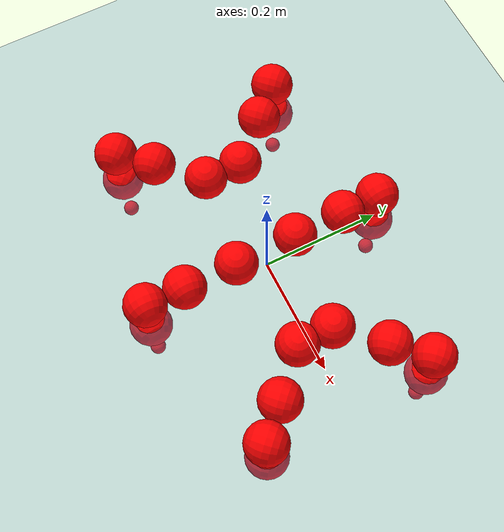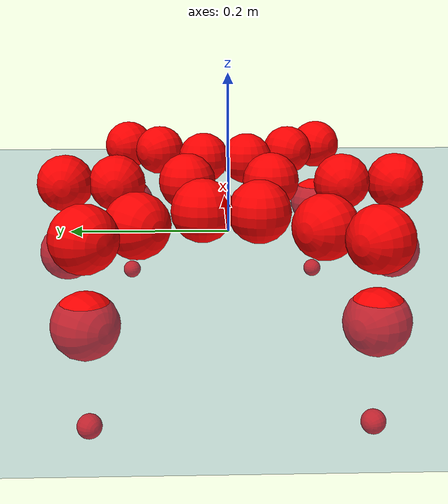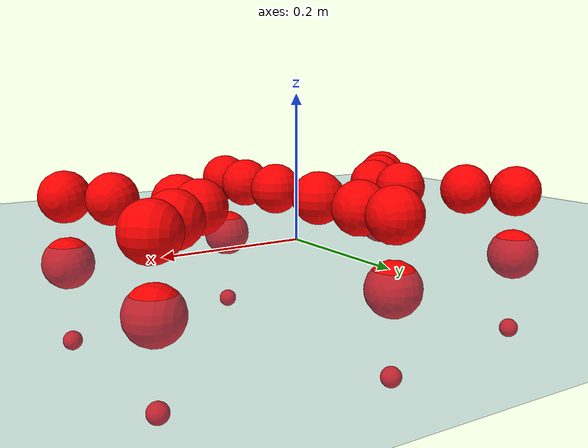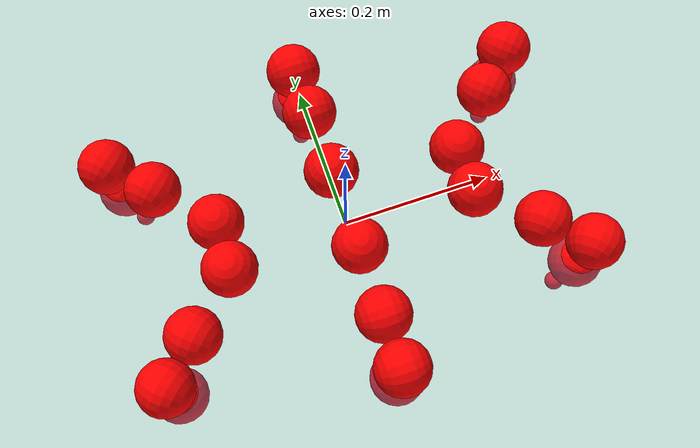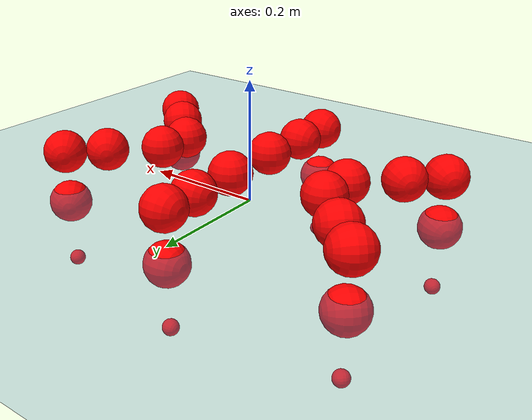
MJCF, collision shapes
<mujoco model="Golem">
  <compiler angle="radian" assetdir="assets" balanceinertia="true" inertiafromgeom="false"/>

  <option timestep="0.005" density="1.2" viscosity="2e-05"/>

  <size nkey="1"/>

  <visual>
    <quality shadowsize="8192"/>
    <map shadowclip="0.5"/>
  </visual>

  <default>
    <default class="/">
      <joint armature="0.01" damping="0.01" frictionloss="0.01"/>
      <geom contype="0" conaffinity="0" group="1" solref="-1000 -80"/>
      <site size="0.01 0.005 0.005" group="5"/>
      <general forcelimited="true" biastype="affine" gainprm="25" biasprm="0 -25 -0.5"/>
      <default class="visual">
        <geom type="mesh" group="2"/>
      </default>
      <default class="collision">
        <geom group="3"/>
      </default>
      <default class="foot">
        <geom size="0.01 0 0" condim="6" group="4" priority="1" solimp="0.015 1 0.01"/>
      </default>
      <default class="reward_collision_sphere">
        <geom group="5" rgba="1 0 0 1"/>
      </default>
    </default>
  </default>

  <asset>
    <texture type="skybox" colorspace="auto" name="//unnamed_texture_0" builtin="gradient" rgb1="0.95 0.95 0.95" rgb2="0.95 0.95 0.95" width="100" height="600"/>
    <texture type="2d" colorspace="auto" name="texplane" builtin="checker" rgb1="0.345 0.575 0.748" rgb2="0.345 0.575 0.748" markrgb="1 1 1" width="512" height="512"/>
    <material name="MatPlane" class="/" texture="texplane" texuniform="true" texrepeat="2 2" specular="0.9"/>
    <mesh name="body" class="/" file="body.stl" scale="0.001 0.001 0.001"/>
    <mesh name="coxa" class="/" file="coxa.stl" scale="0.001 0.001 0.001"/>
    <mesh name="femur" class="/" file="femur.stl" scale="0.001 0.001 0.001"/>
    <mesh name="tibia" class="/" file="tibia.stl" scale="0.001 0.001 0.001"/>
    <mesh name="tarsus" class="/" file="tarsus.stl" scale="0.001 0.001 0.001"/>
  </asset>

  <worldbody>
    <geom name="floor" class="/" size="100 100 0.125" type="plane" group="0" material="MatPlane"/>
    <light name="toplight_shadow" class="/" pos="0 0 5" dir="0.0990148 0.0990148 -0.990148" type="directional" ambient="0.04 0.04 0.04" diffuse="0.55 0.55 0.55" specular="0.12 0.12 0.12"/>
    <light name="toplight_fill" class="/" pos="0 0 5" dir="0.0990148 0.0990148 -0.990148" type="directional" castshadow="false" ambient="0.04 0.04 0.04" diffuse="0.3 0.3 0.3" specular="0.08 0.08 0.08"/>
    <body name="trunk" pos="0.000490931 5.67019e-06 -0.000236594" quat="1 -0.000265646 -0.000128242 0.000243071">
      <inertial pos="0.000202818 -0.0010227 -0.00346323" quat="0.999996 0.000746774 -0.000221776 -0.00277121" mass="2.55532" diaginertia="0.0111335 0.000971844 0.0102877"/>
      <joint name="//unnamed_joint_0" type="free"/>
      <geom name="//unnamed_geom_1" class="/" pos="0 0 0.0643432" quat="1 0 0 0" type="mesh" rgba="0.9 0.9 0.9 1" mesh="body"/>
      <site name="imu" class="/" pos="0.136327 0.000364405 0.0992327" size="0.00884459"/>
      <camera name="track" class="/" pos="0 -1.25226 0" quat="0.707107 0.707107 0 0" mode="trackcom"/>
      <camera name="ego_camera" class="/" pos="0.132845 0 0.100536" quat="-0.5 -0.5 0.5 0.5"/>
      <body name="coxa_RR" pos="-0.181624 -0.0518851 0.064345" quat="0.382657 -6.44932e-05 -0.000490423 -0.92389">
        <inertial pos="-0.000652796 0.00083998 0.000495954" quat="0.999999 0.000733306 -0.000405508 -0.00056599" mass="0.137636" diaginertia="0.011121 0.000964839 0.0101987"/>
        <joint name="coxa_joint_RR" class="/" pos="0 0 0" axis="-5.2934e-05 -0.00174088 -0.999998" range="-3.12348 3.14802" armature="0.00884314" damping="0.00873394" frictionloss="0.00876185"/>
        <geom name="//unnamed_geom_2" class="/" type="mesh" rgba="0.2 0.2 0.2 1" mesh="coxa"/>
        <geom name="//unnamed_geom_3" class="reward_collision_sphere" size="0.0353784" pos="-0.0306565 0 0"/>
        <body name="femur_RR" pos="0.0597858 0.000543577 -0.00129759" quat="0.500062 -0.499851 0.500149 0.499938">
          <inertial pos="0.000165397 0.000416915 0.000146902" quat="1 8.85032e-05 -5.54232e-05 4.23442e-05" mass="0.137905" diaginertia="0.0110992 0.000957791 0.0101713"/>
          <joint name="femur_joint_RR" class="/" pos="0 0 0" axis="0.00166214 0.00130132 -0.999998" range="-3.13775 3.13493" armature="0.0092022" damping="0.00131895" frictionloss="0.0088599"/>
          <geom name="//unnamed_geom_4" class="/" type="mesh" rgba="0.9 0.9 0.9 1" mesh="femur"/>
          <geom name="//unnamed_geom_5" class="reward_collision_sphere" size="0.0353784"/>
          <body name="tibia_RR" pos="0.000699247 -0.0673458 0.00179916" quat="2.17909e-06 1 2.05968e-05 -4.0132e-06">
            <inertial pos="0.000832645 0.000135146 -0.000232922" quat="1 5.65158e-05 0.000639162 -2.99802e-05" mass="0.140046" diaginertia="0.0113 0.000970982 0.0104411"/>
            <joint name="tibia_joint_RR" class="/" pos="0 0 0" axis="-0.00130766 0.001198 0.999998" range="-3.13982 3.15338" armature="0.00889376" damping="0.000277899" frictionloss="0.00897367"/>
            <geom name="//unnamed_geom_6" class="/" type="mesh" rgba="0.2 0.2 0.2 1" mesh="tibia"/>
            <geom name="//unnamed_geom_7" class="reward_collision_sphere" size="0.0353784"/>
            <body name="tarsus_RR" pos="0.0868176 -0.000504842 -0.00016708" quat="1 5.62666e-05 6.93066e-06 -5.23966e-05">
              <inertial pos="0.0607296 -7.358e-05 -0.000529335" quat="0.49854 0.499227 0.501636 0.500592" mass="0.136448" diaginertia="0.0111354 0.000946329 0.010135"/>
              <joint name="tarsus_joint_RR" class="/" pos="0 0 0" axis="0.00319095 0.000135111 0.999995" range="-3.13709 3.13824" armature="0.00888286" damping="0.00350467" frictionloss="0.00864104"/>
              <geom name="//unnamed_geom_8" class="/" type="mesh" rgba="0.9 0.9 0.9 1" mesh="tarsus"/>
              <geom name="foot_1" class="foot" size="0.00861811" pos="0.114451 0 0" quat="0 -0.707107 0 0.707107"/>
              <geom name="//unnamed_geom_10" class="reward_collision_sphere" size="0.0353784"/>
              <geom name="//unnamed_geom_11" class="reward_collision_sphere" size="0.0132669" pos="0.109852 0 0"/>
              <site name="foot_1" class="foot" pos="0.114451 0 0" quat="0 -0.707107 0 0.707107" size="0.00884459"/>
            </body>
          </body>
        </body>
      </body>
      <body name="coxa_RM" pos="-0.000254458 -0.0844197 0.0652755" quat="0.707223 8.4116e-05 0.000180575 -0.706991">
        <inertial pos="0.000188462 0.000943396 -0.000536405" quat="1 -0.000295843 -0.000215874 -3.03849e-05" mass="0.139176" diaginertia="0.0113227 0.000971543 0.0102987"/>
        <joint name="coxa_joint_RM" class="/" pos="0 0 0" axis="-0.00172363 0.000988713 -0.999998" range="-3.13595 3.12971" armature="0.00903687" damping="0.0100091" frictionloss="0.00845366"/>
        <geom name="//unnamed_geom_12" class="/" type="mesh" rgba="0.2 0.2 0.2 1" mesh="coxa"/>
        <geom name="//unnamed_geom_13" class="reward_collision_sphere" size="0.0353784" pos="-0.0306565 0 0"/>
        <body name="femur_RM" pos="0.0590456 -0.000943599 -0.00138261" quat="0.49969 -0.500195 0.499834 0.500281">
          <inertial pos="-0.0004032 0.000651734 -0.000135891" quat="0.999998 0.000478551 0.00187086 -0.000422226" mass="0.138368" diaginertia="0.0111215 0.000969546 0.0102966"/>
          <joint name="femur_joint_RM" class="/" pos="0 0 0" axis="0.000811234 0.000807531 -0.999999" range="-3.133 3.13288" armature="0.0091267" damping="0.00893077" frictionloss="0.00897836"/>
          <geom name="//unnamed_geom_14" class="/" type="mesh" rgba="0.9 0.9 0.9 1" mesh="femur"/>
          <geom name="//unnamed_geom_15" class="reward_collision_sphere" size="0.0353784"/>
          <body name="tibia_RM" pos="-0.000476727 -0.0671992 -0.000646534" quat="-1.71199e-05 1 -1.80281e-05 7.19591e-05">
            <inertial pos="0.000289834 -0.000320739 3.19877e-05" quat="0.999998 -0.00112999 -0.00171486 0.00027" mass="0.138778" diaginertia="0.0111324 0.000965514 0.0103185"/>
            <joint name="tibia_joint_RM" class="/" pos="0 0 0" axis="-0.000134207 -0.000947682 1" range="-3.13125 3.14459" armature="0.00901425" damping="0.00582123" frictionloss="0.00893402"/>
            <geom name="//unnamed_geom_16" class="/" type="mesh" rgba="0.2 0.2 0.2 1" mesh="tibia"/>
            <geom name="//unnamed_geom_17" class="reward_collision_sphere" size="0.0353784"/>
            <body name="tarsus_RM" pos="0.0901198 0.000177998 0.00127106" quat="1 -0.000197334 -0.000138122 0.000185698">
              <inertial pos="0.0619501 0.000545182 0.000903161" quat="0.501499 0.500143 0.501144 0.497202" mass="0.138284" diaginertia="0.0110743 0.000961212 0.0102112"/>
              <joint name="tarsus_joint_RM" class="/" pos="0 0 0" axis="-0.00146675 -0.000769324 0.999999" range="-3.14214 3.15911" armature="0.00885618" damping="0" frictionloss="0.00862521"/>
              <geom name="//unnamed_geom_18" class="/" type="mesh" rgba="0.9 0.9 0.9 1" mesh="tarsus"/>
              <geom name="foot_2" class="foot" size="0.00889046" pos="0.114451 0 0" quat="0 -0.707107 0 0.707107"/>
              <geom name="//unnamed_geom_20" class="reward_collision_sphere" size="0.0353784"/>
              <geom name="//unnamed_geom_21" class="reward_collision_sphere" size="0.0132669" pos="0.109852 0 0"/>
              <site name="foot_2" class="foot" pos="0.114451 0 0" quat="0 -0.707107 0 0.707107" size="0.00884459"/>
            </body>
          </body>
        </body>
      </body>
      <body name="coxa_RF" pos="0.183377 -0.052294 0.0641806" quat="0.923956 1.11863e-05 -4.67114e-05 -0.382498">
        <inertial pos="0.000331247 2.56455e-05 -0.000360093" quat="0.999998 -0.00156695 -0.0011105 -0.000840225" mass="0.137597" diaginertia="0.0111139 0.000962907 0.0102309"/>
        <joint name="coxa_joint_RF" class="/" pos="0 0 0" axis="0.00457443 0.000251559 -0.99999" range="-3.13796 3.12824" armature="0.00874266" damping="0" frictionloss="0.00905286"/>
        <geom name="//unnamed_geom_22" class="/" type="mesh" rgba="0.2 0.2 0.2 1" mesh="coxa"/>
        <geom name="//unnamed_geom_23" class="reward_collision_sphere" size="0.0353784" pos="-0.0306565 0 0"/>
        <body name="femur_RF" pos="0.0606775 0.00126423 0.000149993" quat="0.500137 -0.500402 0.499806 0.499655">
          <inertial pos="0.000558067 -0.000315416 0.000802951" quat="0.99999 -0.00244799 0.00354439 -0.00125743" mass="0.13967" diaginertia="0.0112333 0.000974389 0.0103949"/>
          <joint name="femur_joint_RF" class="/" pos="0 0 0" axis="0.000120335 0.000646678 -1" range="-3.15562 3.12073" armature="0.00869036" damping="0.00630125" frictionloss="0.0089521"/>
          <geom name="//unnamed_geom_24" class="/" type="mesh" rgba="0.9 0.9 0.9 1" mesh="femur"/>
          <geom name="//unnamed_geom_25" class="reward_collision_sphere" size="0.0353784"/>
          <body name="tibia_RF" pos="-0.000455849 -0.0680973 0.000388925" quat="-2.02909e-05 1 -7.80731e-05 0.000127796">
            <inertial pos="0.000334862 0.000648799 8.01414e-05" quat="0.999996 0.00274473 0.000860283 -0.000120341" mass="0.135724" diaginertia="0.011028 0.000955122 0.0101806"/>
            <joint name="tibia_joint_RF" class="/" pos="0 0 0" axis="1.75675e-05 0.000158378 1" range="-3.14307 3.14443" armature="0.00880281" damping="0" frictionloss="0.0088244"/>
            <geom name="//unnamed_geom_26" class="/" type="mesh" rgba="0.2 0.2 0.2 1" mesh="tibia"/>
            <geom name="//unnamed_geom_27" class="reward_collision_sphere" size="0.0353784"/>
            <body name="tarsus_RF" pos="0.0904707 -0.000250241 -0.00055992" quat="1 -4.24935e-05 0.000386179 -0.000208242">
              <inertial pos="0.0615169 -0.000206542 0.000347237" quat="0.500003 0.500029 0.500121 0.499847" mass="0.137037" diaginertia="0.0110262 0.000959595 0.0101991"/>
              <joint name="tarsus_joint_RF" class="/" pos="0 0 0" axis="0.00310676 0.00318242 0.99999" range="-3.13707 3.12897" armature="0.00907486" damping="0" frictionloss="0.00868543"/>
              <geom name="//unnamed_geom_28" class="/" type="mesh" rgba="0.9 0.9 0.9 1" mesh="tarsus"/>
              <geom name="foot_3" class="foot" size="0.00904506" pos="0.114451 0 0" quat="0 -0.707107 0 0.707107"/>
              <geom name="//unnamed_geom_30" class="reward_collision_sphere" size="0.0353784"/>
              <geom name="//unnamed_geom_31" class="reward_collision_sphere" size="0.0132669" pos="0.109852 0 0"/>
              <site name="foot_3" class="foot" pos="0.114451 0 0" quat="0 -0.707107 0 0.707107" size="0.00884459"/>
            </body>
          </body>
        </body>
      </body>
      <body name="coxa_LR" pos="-0.180969 0.0538493 0.065897" quat="0.382754 -2.95321e-05 -0.000290702 0.92385">
        <inertial pos="0.000402579 7.7885e-05 0.00113951" quat="0.999993 -0.000384255 -0.00111385 0.00360667" mass="0.138096" diaginertia="0.0110474 0.000948479 0.010145"/>
        <joint name="coxa_joint_LR" class="/" pos="0 0 0" axis="0.00433119 0.00311925 -0.999986" range="-3.14231 3.13006" armature="0.0087202" damping="0.00773273" frictionloss="0.00858619"/>
        <geom name="//unnamed_geom_32" class="/" type="mesh" rgba="0.2 0.2 0.2 1" mesh="coxa"/>
        <geom name="//unnamed_geom_33" class="reward_collision_sphere" size="0.0353784" pos="-0.0306565 0 0"/>
        <body name="femur_LR" pos="0.0619539 -0.00240764 -0.000127982" quat="0.499807 -0.500203 0.499938 0.500052">
          <inertial pos="8.6476e-05 0.000421342 -0.00077734" quat="0.999991 -0.00405632 0.000700346 0.000952777" mass="0.136768" diaginertia="0.0111283 0.000962376 0.0102554"/>
          <joint name="femur_joint_LR" class="/" pos="0 0 0" axis="0.0026706 0.00107441 0.999996" range="-3.13921 3.13869" armature="0.00844864" damping="0.00351487" frictionloss="0.00870362"/>
          <geom name="//unnamed_geom_34" class="/" type="mesh" rgba="0.9 0.9 0.9 1" mesh="femur"/>
          <geom name="//unnamed_geom_35" class="reward_collision_sphere" size="0.0353784"/>
          <body name="tibia_LR" pos="0.000867397 -0.0688562 -0.000841186" quat="7.72171e-06 1 -3.45154e-05 -1.10339e-05">
            <inertial pos="-0.000368092 0.000126567 0.000510368" quat="0.999998 -0.000349014 -0.00206271 -0.000260977" mass="0.136874" diaginertia="0.0109968 0.000949271 0.0101233"/>
            <joint name="tibia_joint_LR" class="/" pos="0 0 0" axis="-0.00242875 -0.00230525 -0.999994" range="-3.14782 3.11819" armature="0.00924967" damping="0" frictionloss="0.00848173"/>
            <geom name="//unnamed_geom_36" class="/" type="mesh" rgba="0.2 0.2 0.2 1" mesh="tibia"/>
            <geom name="//unnamed_geom_37" class="reward_collision_sphere" size="0.0353784"/>
            <body name="tarsus_LR" pos="0.0898482 0.000387955 0.00186641" quat="1 -4.1769e-05 -4.94599e-05 -7.65669e-05">
              <inertial pos="0.0623716 -4.70623e-05 -0.001002" quat="0.499951 0.499838 0.499909 0.500302" mass="0.138359" diaginertia="0.0110546 0.000958518 0.0103499"/>
              <joint name="tarsus_joint_LR" class="/" pos="0 0 0" axis="0.000456439 0.00256431 -0.999997" range="-3.15653 3.15645" armature="0.00915001" damping="0" frictionloss="0.00882714"/>
              <geom name="//unnamed_geom_38" class="/" type="mesh" rgba="0.9 0.9 0.9 1" mesh="tarsus"/>
              <geom name="foot_4" class="foot" size="0.008733" pos="0.114451 0 0" quat="0.707107 0 -0.707107 0"/>
              <geom name="//unnamed_geom_40" class="reward_collision_sphere" size="0.0353784"/>
              <geom name="//unnamed_geom_41" class="reward_collision_sphere" size="0.0132669" pos="0.109852 0 0"/>
              <site name="foot_4" class="foot" pos="0.114451 0 0" quat="0.707107 0 -0.707107 0" size="0.00884459"/>
            </body>
          </body>
        </body>
      </body>
      <body name="coxa_LM" pos="-0.00197462 0.0822187 0.0653873" quat="0.707325 -0.000144507 -0.000103909 0.706888">
        <inertial pos="0.00024273 -0.000125859 0.00143252" quat="0.999992 -0.00165764 0.00143816 0.00321311" mass="0.136064" diaginertia="0.0111192 0.000957524 0.0101754"/>
        <joint name="coxa_joint_LM" class="/" pos="0 0 0" axis="-0.000686588 0.00223421 -0.999997" range="-3.13292 3.14283" armature="0.00855011" damping="0.00797" frictionloss="0.0088134"/>
        <geom name="//unnamed_geom_42" class="/" type="mesh" rgba="0.2 0.2 0.2 1" mesh="coxa"/>
        <geom name="//unnamed_geom_43" class="reward_collision_sphere" size="0.0353784" pos="-0.0306565 0 0"/>
        <body name="femur_LM" pos="0.0568615 0.00112249 -0.00103771" quat="0.500136 -0.500078 0.499889 0.499897">
          <inertial pos="-0.000750601 -0.00106483 0.00087646" quat="0.999999 -0.000746795 0.00106714 -0.000651936" mass="0.136856" diaginertia="0.011107 0.000948382 0.0102797"/>
          <joint name="femur_joint_LM" class="/" pos="0 0 0" axis="-0.000694683 0.00313518 0.999995" range="-3.13724 3.13817" armature="0.0086428" damping="0.00346362" frictionloss="0.0086122"/>
          <geom name="//unnamed_geom_44" class="/" type="mesh" rgba="0.9 0.9 0.9 1" mesh="femur"/>
          <geom name="//unnamed_geom_45" class="reward_collision_sphere" size="0.0353784"/>
          <body name="tibia_LM" pos="-0.000637408 -0.0642079 0.00177152" quat="6.29556e-06 1 -3.35229e-05 -2.28928e-05">
            <inertial pos="0.000342616 -0.00126582 -0.00070471" quat="0.999997 0.000631556 -0.00177642 0.00179328" mass="0.136886" diaginertia="0.0111596 0.000961287 0.0102644"/>
            <joint name="tibia_joint_LM" class="/" pos="0 0 0" axis="0.000808003 0.00324661 -0.999994" range="-3.13559 3.13823" armature="0.00901901" damping="0.00570769" frictionloss="0.00855405"/>
            <geom name="//unnamed_geom_46" class="/" type="mesh" rgba="0.2 0.2 0.2 1" mesh="tibia"/>
            <geom name="//unnamed_geom_47" class="reward_collision_sphere" size="0.0353784"/>
            <body name="tarsus_LM" pos="0.0890186 3.56277e-05 -0.000184878" quat="1 -0.00015232 3.57777e-05 -2.10657e-05">
              <inertial pos="0.0619317 -0.000985805 -6.67225e-05" quat="0.500005 0.500111 0.499845 0.500039" mass="0.138056" diaginertia="0.0111648 0.000964453 0.0102139"/>
              <joint name="tarsus_joint_LM" class="/" pos="0 0 0" axis="-0.00181867 -0.00464191 -0.999988" stiffness="0.000858221" range="-3.13233 3.14227" armature="0.0088809" damping="0.00223657" frictionloss="0.00874598"/>
              <geom name="//unnamed_geom_48" class="/" type="mesh" rgba="0.9 0.9 0.9 1" mesh="tarsus"/>
              <geom name="foot_5" class="foot" size="0.00887993" pos="0.114451 0 0" quat="0.707107 0 -0.707107 0"/>
              <geom name="//unnamed_geom_50" class="reward_collision_sphere" size="0.0353784"/>
              <geom name="//unnamed_geom_51" class="reward_collision_sphere" size="0.0132669" pos="0.109852 0 0"/>
              <site name="foot_5" class="foot" pos="0.114451 0 0" quat="0.707107 0 -0.707107 0" size="0.00884459"/>
            </body>
          </body>
        </body>
      </body>
      <body name="coxa_LF" pos="0.182366 0.0520717 0.0651887" quat="0.923917 8.80751e-05 -6.24914e-05 0.382594">
        <inertial pos="-0.000427663 0.000448231 -0.000170979" quat="0.999999 -0.000150969 -0.000693026 0.00120608" mass="0.137779" diaginertia="0.0112727 0.000965959 0.0102709"/>
        <joint name="coxa_joint_LF" class="/" pos="0 0 0" axis="0.00144545 -0.00446088 -0.999989" range="-3.13117 3.13925" armature="0.00918894" damping="0.000246646" frictionloss="0.00892534"/>
        <geom name="//unnamed_geom_52" class="/" type="mesh" rgba="0.2 0.2 0.2 1" mesh="coxa"/>
        <geom name="//unnamed_geom_53" class="reward_collision_sphere" size="0.0353784" pos="-0.0306565 0 0"/>
        <body name="femur_LF" pos="0.0603361 0.000562923 0.000492388" quat="0.50015 -0.499983 0.49991 0.499957">
          <inertial pos="0.000281208 -0.000903139 -2.16836e-05" quat="0.999997 -0.00214852 0.000800742 -0.00118588" mass="0.138464" diaginertia="0.0111983 0.0009602 0.0102711"/>
          <joint name="femur_joint_LF" class="/" pos="0 0 0" axis="0.000991371 0.00302343 0.999995" range="-3.14022 3.13345" armature="0.00884796" damping="0.00186642" frictionloss="0.00886677"/>
          <geom name="//unnamed_geom_54" class="/" type="mesh" rgba="0.9 0.9 0.9 1" mesh="femur"/>
          <geom name="//unnamed_geom_55" class="reward_collision_sphere" size="0.0353784"/>
          <body name="tibia_LF" pos="-2.2976e-05 -0.0688711 0.000975918" quat="9.5735e-05 1 0.000380022 -0.000106375">
            <inertial pos="0.000317309 0.000210556 -0.000240484" quat="0.999987 0.00310219 -0.00235333 -0.00323021" mass="0.139366" diaginertia="0.0112699 0.000965345 0.0103002"/>
            <joint name="tibia_joint_LF" class="/" pos="0 0 0" axis="-0.00566492 -0.0016073 -0.999983" range="-3.14054 3.12612" armature="0.00880047" damping="0" frictionloss="0.00863547"/>
            <geom name="//unnamed_geom_56" class="/" type="mesh" rgba="0.2 0.2 0.2 1" mesh="tibia"/>
            <geom name="//unnamed_geom_57" class="reward_collision_sphere" size="0.0353784"/>
            <body name="tarsus_LF" pos="0.0896465 6.29513e-05 -0.000841925" quat="1 -3.1122e-05 -6.9692e-05 4.36595e-05">
              <inertial pos="0.0622833 0.000976162 0.000366465" quat="0.499916 0.499618 0.498981 0.501482" mass="0.137725" diaginertia="0.0110594 0.000955447 0.0102415"/>
              <joint name="tarsus_joint_LF" class="/" pos="0 0 0" axis="-0.000839191 0.00358246 -0.999993" range="-3.14445 3.12129" armature="0.00909619" damping="0.00857862" frictionloss="0.00875511"/>
              <geom name="//unnamed_geom_58" class="/" type="mesh" rgba="0.9 0.9 0.9 1" mesh="tarsus"/>
              <geom name="foot_6" class="foot" size="0.00855623" pos="0.114451 0 0" quat="0.707107 0 -0.707107 0"/>
              <geom name="//unnamed_geom_60" class="reward_collision_sphere" size="0.0353784"/>
              <geom name="//unnamed_geom_61" class="reward_collision_sphere" size="0.0132669" pos="0.109852 0 0"/>
              <site name="foot_6" class="foot" pos="0.114451 0 0" quat="0.707107 0 -0.707107 0" size="0.00884459"/>
            </body>
          </body>
        </body>
      </body>
    </body>
  </worldbody>

  <contact>
    <pair class="/" geom1="floor" geom2="foot_1" name="//unnamed_contact_0"/>
    <pair class="/" geom1="floor" geom2="foot_2" name="//unnamed_contact_1"/>
    <pair class="/" geom1="floor" geom2="foot_3" name="//unnamed_contact_2"/>
    <pair class="/" geom1="floor" geom2="foot_4" name="//unnamed_contact_3"/>
    <pair class="/" geom1="floor" geom2="foot_5" name="//unnamed_contact_4"/>
    <pair class="/" geom1="floor" geom2="foot_6" name="//unnamed_contact_5"/>
  </contact>

  <actuator>
    <general name="coxa_joint_RR" class="/" joint="coxa_joint_RR" forcerange="-6.51663 6.51663" gainprm="21.2867" biasprm="0 -21.2867 -0.454543"/>
    <general name="femur_joint_RR" class="/" joint="femur_joint_RR" forcerange="-6.24362 6.24362" gainprm="21.2867" biasprm="0 -21.2867 -0.454543"/>
    <general name="tibia_joint_RR" class="/" joint="tibia_joint_RR" forcerange="-6.49863 6.49863" gainprm="21.2867" biasprm="0 -21.2867 -0.454543"/>
    <general name="tarsus_joint_RR" class="/" joint="tarsus_joint_RR" forcerange="-6.34653 6.34653" gainprm="21.2867" biasprm="0 -21.2867 -0.454543"/>
    <general name="coxa_joint_RM" class="/" joint="coxa_joint_RM" forcerange="-6.71123 6.71123" gainprm="21.2867" biasprm="0 -21.2867 -0.454543"/>
    <general name="femur_joint_RM" class="/" joint="femur_joint_RM" forcerange="-6.53201 6.53201" gainprm="21.2867" biasprm="0 -21.2867 -0.454543"/>
    <general name="tibia_joint_RM" class="/" joint="tibia_joint_RM" forcerange="-6.32724 6.32724" gainprm="21.2867" biasprm="0 -21.2867 -0.454543"/>
    <general name="tarsus_joint_RM" class="/" joint="tarsus_joint_RM" forcerange="-6.49337 6.49337" gainprm="21.2867" biasprm="0 -21.2867 -0.454543"/>
    <general name="coxa_joint_RF" class="/" joint="coxa_joint_RF" forcerange="-6.35991 6.35991" gainprm="21.2867" biasprm="0 -21.2867 -0.454543"/>
    <general name="femur_joint_RF" class="/" joint="femur_joint_RF" forcerange="-6.47686 6.47686" gainprm="21.2867" biasprm="0 -21.2867 -0.454543"/>
    <general name="tibia_joint_RF" class="/" joint="tibia_joint_RF" forcerange="-6.45535 6.45535" gainprm="21.2867" biasprm="0 -21.2867 -0.454543"/>
    <general name="tarsus_joint_RF" class="/" joint="tarsus_joint_RF" forcerange="-6.46951 6.46951" gainprm="21.2867" biasprm="0 -21.2867 -0.454543"/>
    <general name="coxa_joint_LR" class="/" joint="coxa_joint_LR" forcerange="-6.51237 6.51237" gainprm="21.2867" biasprm="0 -21.2867 -0.454543"/>
    <general name="femur_joint_LR" class="/" joint="femur_joint_LR" forcerange="-6.46401 6.46401" gainprm="21.2867" biasprm="0 -21.2867 -0.454543"/>
    <general name="tibia_joint_LR" class="/" joint="tibia_joint_LR" forcerange="-6.29265 6.29265" gainprm="21.2867" biasprm="0 -21.2867 -0.454543"/>
    <general name="tarsus_joint_LR" class="/" joint="tarsus_joint_LR" forcerange="-6.57113 6.57113" gainprm="21.2867" biasprm="0 -21.2867 -0.454543"/>
    <general name="coxa_joint_LM" class="/" joint="coxa_joint_LM" forcerange="-6.51827 6.51827" gainprm="21.2867" biasprm="0 -21.2867 -0.454543"/>
    <general name="femur_joint_LM" class="/" joint="femur_joint_LM" forcerange="-6.45404 6.45404" gainprm="21.2867" biasprm="0 -21.2867 -0.454543"/>
    <general name="tibia_joint_LM" class="/" joint="tibia_joint_LM" forcerange="-6.47473 6.47473" gainprm="21.2867" biasprm="0 -21.2867 -0.454543"/>
    <general name="tarsus_joint_LM" class="/" joint="tarsus_joint_LM" forcerange="-6.68204 6.68204" gainprm="21.2867" biasprm="0 -21.2867 -0.454543"/>
    <general name="coxa_joint_LF" class="/" joint="coxa_joint_LF" forcerange="-6.634 6.634" gainprm="21.2867" biasprm="0 -21.2867 -0.454543"/>
    <general name="femur_joint_LF" class="/" joint="femur_joint_LF" forcerange="-6.64738 6.64738" gainprm="21.2867" biasprm="0 -21.2867 -0.454543"/>
    <general name="tibia_joint_LF" class="/" joint="tibia_joint_LF" forcerange="-6.47963 6.47963" gainprm="21.2867" biasprm="0 -21.2867 -0.454543"/>
    <general name="tarsus_joint_LF" class="/" joint="tarsus_joint_LF" forcerange="-6.63909 6.63909" gainprm="21.2867" biasprm="0 -21.2867 -0.454543"/>
  </actuator>

  <sensor>
    <gyro site="imu" name="imu_angular_velocity"/>
    <velocimeter site="imu" name="imu_linear_velocity"/>
    <framelinvel objtype="site" objname="foot_1" name="foot_1_global_linear_velocity"/>
    <framelinvel objtype="site" objname="foot_2" name="foot_2_global_linear_velocity"/>
    <framelinvel objtype="site" objname="foot_3" name="foot_3_global_linear_velocity"/>
    <framelinvel objtype="site" objname="foot_4" name="foot_4_global_linear_velocity"/>
    <framelinvel objtype="site" objname="foot_5" name="foot_5_global_linear_velocity"/>
    <framelinvel objtype="site" objname="foot_6" name="foot_6_global_linear_velocity"/>
  </sensor>

  <keyframe>
    <key name="home" qpos="0 0 0.1457 1 0 0 0 0 0 0 0 0 0 0 0 0 0 0 0 0 0 0 0 0 0 0 0 0 0 0 0"/>
  </keyframe>
</mujoco>
